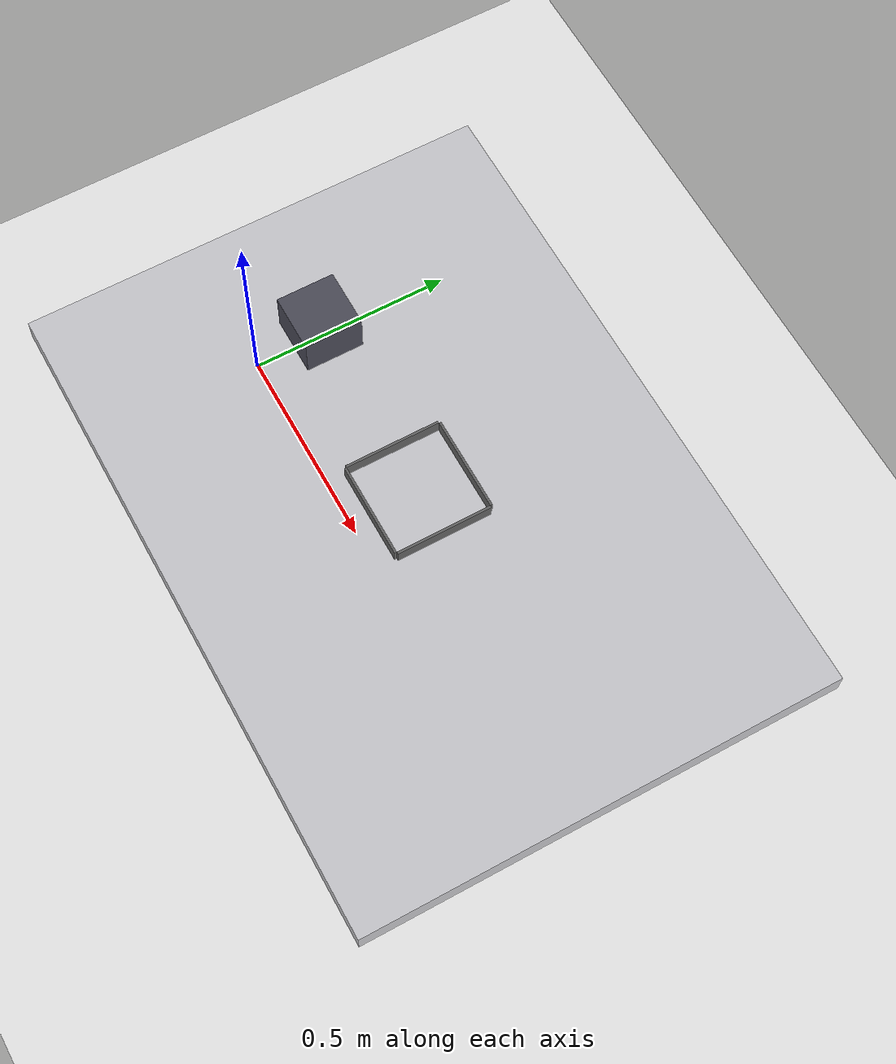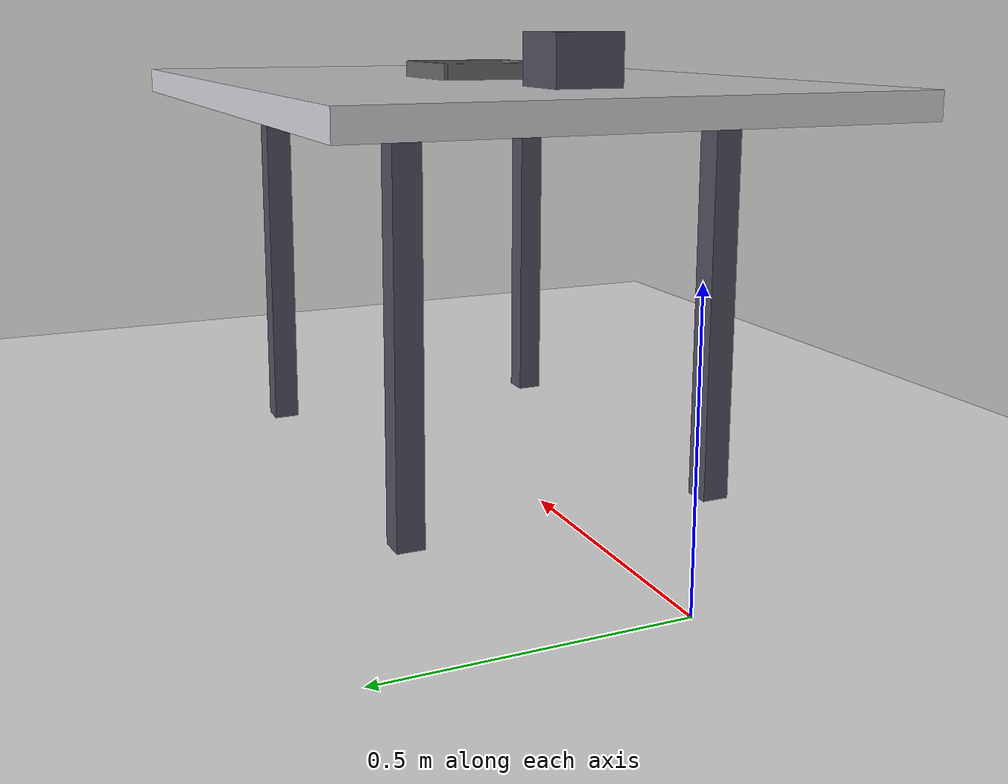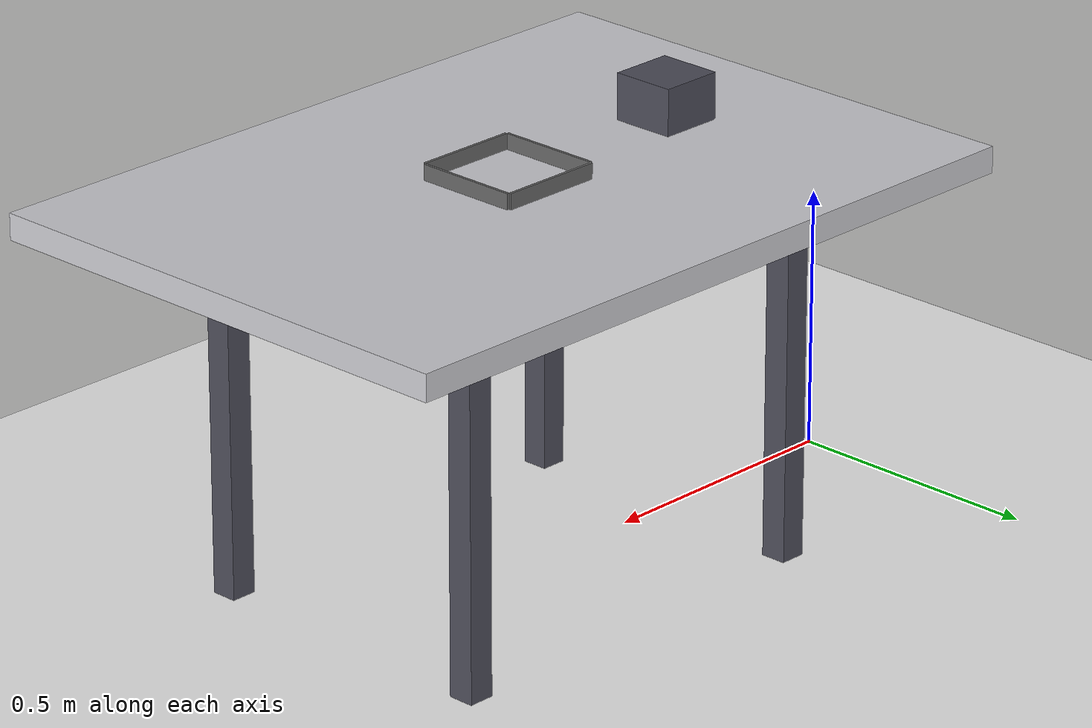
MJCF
<?xml version="1.0" encoding="utf-8"?>
<mujoco model="static_scene">

  <compiler angle="radian" autolimits="true" meshdir="."/>
  <option integrator="implicitfast" timestep="0.002" gravity="0 0 -9.81"/>

  <asset>
    <!-- 场景用材质 -->
    <texture name="sky" builtin="gradient" width="256" height="256"
             rgb1="0.9 0.9 1.0" rgb2="0.2 0.3 0.4" type="skybox"/>
    <material name="mat_floor" rgba="0.93 0.93 0.93 1"/>
    <material name="mat_table" rgba="0.80 0.80 0.82 1"/>
    <material name="mat_leg"   rgba="0.30 0.30 0.35 1"/>
    <material name="mat_rack"  rgba="0.40 0.40 0.40 1"/>

    <!-- 容纳架 网格 -->
    <mesh name="tangram_rack" file="meshes_tangram_rack.obj"/>
  </asset>

  <default>
    <geom solref="0.006 1" solimp="0.9 0.95 0.002" friction="1.2 0.2 0.02"/>
  </default>

  <worldbody>
    <!-- 地面 -->
    <geom name="floor" type="plane" size="5 5 0.1" material="mat_floor"/>

    <!-- 桌子 -->
    <body name="table" pos="0.8 0 0.35">
      <geom type="box" size="0.025 0.025 0.35" pos="0.395 0.295 0" material="mat_leg"/>
      <geom type="box" size="0.025 0.025 0.35" pos="0.39 -0.295 0"  material="mat_leg"/>
      <geom type="box" size="0.025 0.025 0.35" pos="-0.395 0.295 0" material="mat_leg"/>
      <geom type="box" size="0.025 0.025 0.35" pos="-0.395 -0.295 0" material="mat_leg"/>
      <geom name="table_top" type="box" size="0.7 0.5 0.025"
            pos="0 0 0.375" material="mat_table"
            contype="1" conaffinity="1"
            friction="1 0.05 0.01"
            solref="0.001 1"
            solimp="0.97 0.99 0.002"
            condim="6"/>
    </body>

    <!-- xArm7 底座 -->
    <body name="xarm_base_plate" pos="0.4 0 0.788">
      <geom type="box" size="0.061 0.061 0.051"
            material="mat_leg" contype="0" conaffinity="0"/>
    </body>

    <!-- 七巧板容纳架 -->
    <body name="tangram_rack" pos="0.8 0 0.73">
      <geom type="mesh" mesh="tangram_rack"
            material="mat_rack"
            contype="1" conaffinity="1"
            friction="1 0.05 0.01"
            solref="0.001 1"
            solimp="0.97 0.99 0.002"
            condim="6"/>
    </body>

    <light name="light_main" pos="1.2 0 2.0" dir="0 0 -1"/>
    <camera name="front" pos="1.6 0 1.45" quat="0.56 0.43 0.43 0.56"/>
  </worldbody>

</mujoco>
